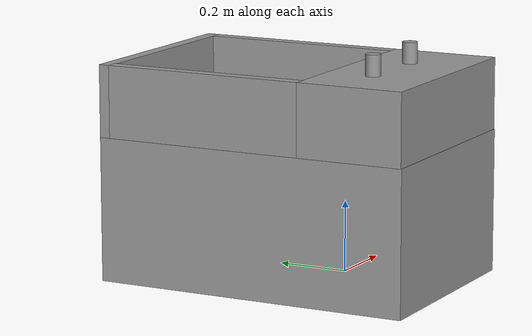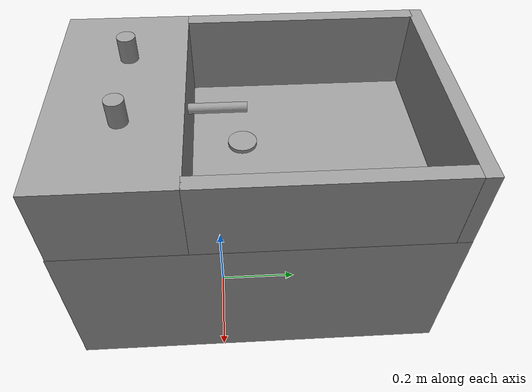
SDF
<?xml version='1.0'?>
<sdf version='1.7'>
  <model name='my_bidet'>
    <link name='link_2'>
      <inertial>
        <mass>1</mass>
        <inertia>
          <ixx>0.166667</ixx>
          <ixy>0</ixy>
          <ixz>0</ixz>
          <iyy>0.166667</iyy>
          <iyz>0</iyz>
          <izz>0.166667</izz>
        </inertia>
        <pose>0 0 0 0 -0 0</pose>
      </inertial>
      <pose>-0.099981 0.092319 0 0 -0 0</pose>
      <gravity>1</gravity>
      <self_collide>0</self_collide>
      <kinematic>0</kinematic>
      <enable_wind>0</enable_wind>
      <visual name='visual'>
        <pose>0 0 0.2 0 -0 0</pose>
        <geometry>
          <box>
            <size>0.6 0.9 0.4</size>
          </box>
        </geometry>
        <material>
          <lighting>1</lighting>
          <script>
            <uri>file://media/materials/scripts/gazebo.material</uri>
            <name>Gazebo/Grey</name>
          </script>
          <shader type='pixel'>
            <normal_map>__default__</normal_map>
          </shader>
          <ambient>0.9 0.9 0.9 1</ambient>
          <diffuse>0.9 0.9 0.9 1</diffuse>
          <specular>0.01 0.01 0.01 1</specular>
          <emissive>0 0 0 1</emissive>
        </material>
        <transparency>0</transparency>
        <cast_shadows>1</cast_shadows>
      </visual>
      <collision name='collision'>
        <laser_retro>0</laser_retro>
        <max_contacts>10</max_contacts>
        <pose>0 0 0.2 0 -0 0</pose>
        <geometry>
          <box>
            <size>0.6 0.9 0.4</size>
          </box>
        </geometry>
        <surface>
          <friction>
            <ode>
              <mu>1</mu>
              <mu2>1</mu2>
              <fdir1>0 0 0</fdir1>
              <slip1>0</slip1>
              <slip2>0</slip2>
            </ode>
            <torsional>
              <coefficient>1</coefficient>
              <patch_radius>0</patch_radius>
              <surface_radius>0</surface_radius>
              <use_patch_radius>1</use_patch_radius>
              <ode>
                <slip>0</slip>
              </ode>
            </torsional>
          </friction>
          <bounce>
            <restitution_coefficient>0</restitution_coefficient>
            <threshold>1e+06</threshold>
          </bounce>
          <contact>
            <collide_without_contact>0</collide_without_contact>
            <collide_without_contact_bitmask>1</collide_without_contact_bitmask>
            <collide_bitmask>1</collide_bitmask>
            <ode>
              <soft_cfm>0</soft_cfm>
              <soft_erp>0.2</soft_erp>
              <kp>1e+13</kp>
              <kd>1</kd>
              <max_vel>0.01</max_vel>
              <min_depth>0</min_depth>
            </ode>
            <bullet>
              <split_impulse>1</split_impulse>
              <split_impulse_penetration_threshold>-0.01</split_impulse_penetration_threshold>
              <soft_cfm>0</soft_cfm>
              <soft_erp>0.2</soft_erp>
              <kp>1e+13</kp>
              <kd>1</kd>
            </bullet>
          </contact>
        </surface>
      </collision>
    </link>
    <link name='link_0'>
      <inertial>
        <mass>1</mass>
        <inertia>
          <ixx>0.145833</ixx>
          <ixy>0</ixy>
          <ixz>0</ixz>
          <iyy>0.145833</iyy>
          <iyz>0</iyz>
          <izz>0.125</izz>
        </inertia>
        <pose>0 0 0 0 -0 0</pose>
      </inertial>
      <pose>-0.107898 0.002946 0.537008 0 -0 0</pose>
      <gravity>0</gravity>
      <self_collide>0</self_collide>
      <kinematic>0</kinematic>
      <enable_wind>0</enable_wind>
      <visual name='visual'>
        <pose>0 0 0 1.5707 -0 0</pose>
        <geometry>
          <cylinder>
            <radius>0.012</radius>
            <length>0.15</length>
          </cylinder>
        </geometry>
        <material>
          <lighting>1</lighting>
          <script>
            <uri>file://media/materials/scripts/gazebo.material</uri>
            <name>Gazebo/Grey</name>
          </script>
          <shader type='pixel'>
            <normal_map>__default__</normal_map>
          </shader>
          <ambient>0.2 0.2 0.2 1</ambient>
          <diffuse>0.2 0.2 0.2 1</diffuse>
          <specular>0.01 0.01 0.01 1</specular>
          <emissive>0 0 0 1</emissive>
        </material>
        <transparency>0</transparency>
        <cast_shadows>1</cast_shadows>
      </visual>
      <collision name='collision'>
        <laser_retro>0</laser_retro>
        <max_contacts>10</max_contacts>
        <pose>0 0 0 1.5707 -0 0</pose>
        <geometry>
          <cylinder>
            <radius>0.012</radius>
            <length>0.15</length>
          </cylinder>
        </geometry>
        <surface>
          <friction>
            <ode>
              <mu>1</mu>
              <mu2>1</mu2>
              <fdir1>0 0 0</fdir1>
              <slip1>0</slip1>
              <slip2>0</slip2>
            </ode>
            <torsional>
              <coefficient>1</coefficient>
              <patch_radius>0</patch_radius>
              <surface_radius>0</surface_radius>
              <use_patch_radius>1</use_patch_radius>
              <ode>
                <slip>0</slip>
              </ode>
            </torsional>
          </friction>
          <bounce>
            <restitution_coefficient>0</restitution_coefficient>
            <threshold>1e+06</threshold>
          </bounce>
          <contact>
            <collide_without_contact>0</collide_without_contact>
            <collide_without_contact_bitmask>1</collide_without_contact_bitmask>
            <collide_bitmask>1</collide_bitmask>
            <ode>
              <soft_cfm>0</soft_cfm>
              <soft_erp>0.2</soft_erp>
              <kp>1e+13</kp>
              <kd>1</kd>
              <max_vel>0.01</max_vel>
              <min_depth>0</min_depth>
            </ode>
            <bullet>
              <split_impulse>1</split_impulse>
              <split_impulse_penetration_threshold>-0.01</split_impulse_penetration_threshold>
              <soft_cfm>0</soft_cfm>
              <soft_erp>0.2</soft_erp>
              <kp>1e+13</kp>
              <kd>1</kd>
            </bullet>
          </contact>
        </surface>
      </collision>
    </link>
    <link name='link_0_clone'>
      <inertial>
        <mass>1</mass>
        <inertia>
          <ixx>0.145833</ixx>
          <ixy>0</ixy>
          <ixz>0</ixz>
          <iyy>0.145833</iyy>
          <iyz>0</iyz>
          <izz>0.125</izz>
        </inertia>
        <pose>0 0 0 0 -0 0</pose>
      </inertial>
      <pose>-0.11579 0.066236 0.419967 0 -0 0</pose>
      <gravity>0</gravity>
      <self_collide>0</self_collide>
      <kinematic>0</kinematic>
      <enable_wind>0</enable_wind>
      <visual name='visual'>
        <pose>0 0 0 0 -0 0</pose>
        <geometry>
          <cylinder>
            <radius>0.035</radius>
            <length>0.01</length>
          </cylinder>
        </geometry>
        <material>
          <lighting>1</lighting>
          <script>
            <uri>file://media/materials/scripts/gazebo.material</uri>
            <name>Gazebo/Grey</name>
          </script>
          <shader type='pixel'>
            <normal_map>__default__</normal_map>
          </shader>
          <ambient>0.2 0.2 0.2 1</ambient>
          <diffuse>0.2 0.2 0.2 1</diffuse>
          <specular>0.01 0.01 0.01 1</specular>
          <emissive>0 0 0 1</emissive>
        </material>
        <transparency>0</transparency>
        <cast_shadows>1</cast_shadows>
      </visual>
      <collision name='collision'>
        <laser_retro>0</laser_retro>
        <max_contacts>10</max_contacts>
        <pose>0 0 0 0 -0 0</pose>
        <geometry>
          <cylinder>
            <radius>0.035</radius>
            <length>0.01</length>
          </cylinder>
        </geometry>
        <surface>
          <friction>
            <ode>
              <mu>1</mu>
              <mu2>1</mu2>
              <fdir1>0 0 0</fdir1>
              <slip1>0</slip1>
              <slip2>0</slip2>
            </ode>
            <torsional>
              <coefficient>1</coefficient>
              <patch_radius>0</patch_radius>
              <surface_radius>0</surface_radius>
              <use_patch_radius>1</use_patch_radius>
              <ode>
                <slip>0</slip>
              </ode>
            </torsional>
          </friction>
          <bounce>
            <restitution_coefficient>0</restitution_coefficient>
            <threshold>1e+06</threshold>
          </bounce>
          <contact>
            <collide_without_contact>0</collide_without_contact>
            <collide_without_contact_bitmask>1</collide_without_contact_bitmask>
            <collide_bitmask>1</collide_bitmask>
            <ode>
              <soft_cfm>0</soft_cfm>
              <soft_erp>0.2</soft_erp>
              <kp>1e+13</kp>
              <kd>1</kd>
              <max_vel>0.01</max_vel>
              <min_depth>0</min_depth>
            </ode>
            <bullet>
              <split_impulse>1</split_impulse>
              <split_impulse_penetration_threshold>-0.01</split_impulse_penetration_threshold>
              <soft_cfm>0</soft_cfm>
              <soft_erp>0.2</soft_erp>
              <kp>1e+13</kp>
              <kd>1</kd>
            </bullet>
          </contact>
        </surface>
      </collision>
    </link>
    <link name='link_0_clone_clone'>
      <inertial>
        <mass>1</mass>
        <inertia>
          <ixx>0.145833</ixx>
          <ixy>0</ixy>
          <ixz>0</ixz>
          <iyy>0.145833</iyy>
          <iyz>0</iyz>
          <izz>0.125</izz>
        </inertia>
        <pose>0 0 0 0 -0 0</pose>
      </inertial>
      <pose>0.004222 -0.190448 0.62857 0 -0 0</pose>
      <gravity>1</gravity>
      <self_collide>0</self_collide>
      <kinematic>0</kinematic>
      <enable_wind>0</enable_wind>
      <visual name='visual'>
        <pose>0 0 0 0 -0 0</pose>
        <geometry>
          <cylinder>
            <radius>0.021</radius>
            <length>0.06</length>
          </cylinder>
        </geometry>
        <material>
          <lighting>1</lighting>
          <script>
            <uri>file://media/materials/scripts/gazebo.material</uri>
            <name>Gazebo/Grey</name>
          </script>
          <shader type='pixel'>
            <normal_map>__default__</normal_map>
          </shader>
          <ambient>0.2 0.2 0.2 1</ambient>
          <diffuse>0.2 0.2 0.2 1</diffuse>
          <specular>0.01 0.01 0.01 1</specular>
          <emissive>0 0 0 1</emissive>
        </material>
        <transparency>0</transparency>
        <cast_shadows>1</cast_shadows>
      </visual>
      <collision name='collision'>
        <laser_retro>0</laser_retro>
        <max_contacts>10</max_contacts>
        <pose>0 0 0 0 -0 0</pose>
        <geometry>
          <cylinder>
            <radius>0.021</radius>
            <length>0.06</length>
          </cylinder>
        </geometry>
        <surface>
          <friction>
            <ode>
              <mu>1</mu>
              <mu2>1</mu2>
              <fdir1>0 0 0</fdir1>
              <slip1>0</slip1>
              <slip2>0</slip2>
            </ode>
            <torsional>
              <coefficient>1</coefficient>
              <patch_radius>0</patch_radius>
              <surface_radius>0</surface_radius>
              <use_patch_radius>1</use_patch_radius>
              <ode>
                <slip>0</slip>
              </ode>
            </torsional>
          </friction>
          <bounce>
            <restitution_coefficient>0</restitution_coefficient>
            <threshold>1e+06</threshold>
          </bounce>
          <contact>
            <collide_without_contact>0</collide_without_contact>
            <collide_without_contact_bitmask>1</collide_without_contact_bitmask>
            <collide_bitmask>1</collide_bitmask>
            <ode>
              <soft_cfm>0</soft_cfm>
              <soft_erp>0.2</soft_erp>
              <kp>1e+13</kp>
              <kd>1</kd>
              <max_vel>0.01</max_vel>
              <min_depth>0</min_depth>
            </ode>
            <bullet>
              <split_impulse>1</split_impulse>
              <split_impulse_penetration_threshold>-0.01</split_impulse_penetration_threshold>
              <soft_cfm>0</soft_cfm>
              <soft_erp>0.2</soft_erp>
              <kp>1e+13</kp>
              <kd>1</kd>
            </bullet>
          </contact>
        </surface>
      </collision>
    </link>
    <link name='link_0_clone_clone_clone'>
      <inertial>
        <mass>1</mass>
        <inertia>
          <ixx>0.145833</ixx>
          <ixy>0</ixy>
          <ixz>0</ixz>
          <iyy>0.145833</iyy>
          <iyz>0</iyz>
          <izz>0.125</izz>
        </inertia>
        <pose>0 0 0 0 -0 0</pose>
      </inertial>
      <pose>-0.220329 -0.188869 0.62857 0 -0 0</pose>
      <gravity>1</gravity>
      <self_collide>0</self_collide>
      <kinematic>0</kinematic>
      <enable_wind>0</enable_wind>
      <visual name='visual'>
        <pose>0 0 0 0 -0 0</pose>
        <geometry>
          <cylinder>
            <radius>0.021</radius>
            <length>0.06</length>
          </cylinder>
        </geometry>
        <material>
          <lighting>1</lighting>
          <script>
            <uri>file://media/materials/scripts/gazebo.material</uri>
            <name>Gazebo/Grey</name>
          </script>
          <shader type='pixel'>
            <normal_map>__default__</normal_map>
          </shader>
          <ambient>0.2 0.2 0.2 1</ambient>
          <diffuse>0.2 0.2 0.2 1</diffuse>
          <specular>0.01 0.01 0.01 1</specular>
          <emissive>0 0 0 1</emissive>
        </material>
        <transparency>0</transparency>
        <cast_shadows>1</cast_shadows>
      </visual>
      <collision name='collision'>
        <laser_retro>0</laser_retro>
        <max_contacts>10</max_contacts>
        <pose>0 0 0 0 -0 0</pose>
        <geometry>
          <cylinder>
            <radius>0.021</radius>
            <length>0.06</length>
          </cylinder>
        </geometry>
        <surface>
          <friction>
            <ode>
              <mu>1</mu>
              <mu2>1</mu2>
              <fdir1>0 0 0</fdir1>
              <slip1>0</slip1>
              <slip2>0</slip2>
            </ode>
            <torsional>
              <coefficient>1</coefficient>
              <patch_radius>0</patch_radius>
              <surface_radius>0</surface_radius>
              <use_patch_radius>1</use_patch_radius>
              <ode>
                <slip>0</slip>
              </ode>
            </torsional>
          </friction>
          <bounce>
            <restitution_coefficient>0</restitution_coefficient>
            <threshold>1e+06</threshold>
          </bounce>
          <contact>
            <collide_without_contact>0</collide_without_contact>
            <collide_without_contact_bitmask>1</collide_without_contact_bitmask>
            <collide_bitmask>1</collide_bitmask>
            <ode>
              <soft_cfm>0</soft_cfm>
              <soft_erp>0.2</soft_erp>
              <kp>1e+13</kp>
              <kd>1</kd>
              <max_vel>0.01</max_vel>
              <min_depth>0</min_depth>
            </ode>
            <bullet>
              <split_impulse>1</split_impulse>
              <split_impulse_penetration_threshold>-0.01</split_impulse_penetration_threshold>
              <soft_cfm>0</soft_cfm>
              <soft_erp>0.2</soft_erp>
              <kp>1e+13</kp>
              <kd>1</kd>
            </bullet>
          </contact>
        </surface>
      </collision>
    </link>
    <link name='link_2_clone'>
      <inertial>
        <mass>1</mass>
        <inertia>
          <ixx>0.166667</ixx>
          <ixy>0</ixy>
          <ixz>0</ixz>
          <iyy>0.166667</iyy>
          <iyz>0</iyz>
          <izz>0.166667</izz>
        </inertia>
        <pose>0 0 0 0 -0 0</pose>
      </inertial>
      <pose>-0.101165 -0.206254 0 0 -0 0</pose>
      <gravity>0</gravity>
      <self_collide>0</self_collide>
      <kinematic>0</kinematic>
      <enable_wind>0</enable_wind>
      <visual name='visual'>
        <pose>0 0 0.5 0 -0 0</pose>
        <geometry>
          <box>
            <size>0.6 0.3 0.2</size>
          </box>
        </geometry>
        <material>
          <lighting>1</lighting>
          <script>
            <uri>file://media/materials/scripts/gazebo.material</uri>
            <name>Gazebo/Grey</name>
          </script>
          <shader type='pixel'>
            <normal_map>__default__</normal_map>
          </shader>
          <ambient>0.9 0.9 0.9 1</ambient>
          <diffuse>0.9 0.9 0.9 1</diffuse>
          <specular>0.01 0.01 0.01 1</specular>
          <emissive>0 0 0 1</emissive>
        </material>
        <transparency>0</transparency>
        <cast_shadows>1</cast_shadows>
      </visual>
      <collision name='collision'>
        <laser_retro>0</laser_retro>
        <max_contacts>10</max_contacts>
        <pose>0 0 0.5 0 -0 0</pose>
        <geometry>
          <box>
            <size>0.6 0.3 0.2</size>
          </box>
        </geometry>
        <surface>
          <friction>
            <ode>
              <mu>1</mu>
              <mu2>1</mu2>
              <fdir1>0 0 0</fdir1>
              <slip1>0</slip1>
              <slip2>0</slip2>
            </ode>
            <torsional>
              <coefficient>1</coefficient>
              <patch_radius>0</patch_radius>
              <surface_radius>0</surface_radius>
              <use_patch_radius>1</use_patch_radius>
              <ode>
                <slip>0</slip>
              </ode>
            </torsional>
          </friction>
          <bounce>
            <restitution_coefficient>0</restitution_coefficient>
            <threshold>1e+06</threshold>
          </bounce>
          <contact>
            <collide_without_contact>0</collide_without_contact>
            <collide_without_contact_bitmask>1</collide_without_contact_bitmask>
            <collide_bitmask>1</collide_bitmask>
            <ode>
              <soft_cfm>0</soft_cfm>
              <soft_erp>0.2</soft_erp>
              <kp>1e+13</kp>
              <kd>1</kd>
              <max_vel>0.01</max_vel>
              <min_depth>0</min_depth>
            </ode>
            <bullet>
              <split_impulse>1</split_impulse>
              <split_impulse_penetration_threshold>-0.01</split_impulse_penetration_threshold>
              <soft_cfm>0</soft_cfm>
              <soft_erp>0.2</soft_erp>
              <kp>1e+13</kp>
              <kd>1</kd>
            </bullet>
          </contact>
        </surface>
      </collision>
    </link>
    <link name='link_2_clone_clone'>
      <inertial>
        <mass>1</mass>
        <inertia>
          <ixx>0.166667</ixx>
          <ixy>0</ixy>
          <ixz>0</ixz>
          <iyy>0.166667</iyy>
          <iyz>0</iyz>
          <izz>0.166667</izz>
        </inertia>
        <pose>0 0 0 0 -0 0</pose>
      </inertial>
      <pose>0.181682 0.225906 0 0 -0 0</pose>
      <gravity>0</gravity>
      <self_collide>0</self_collide>
      <kinematic>0</kinematic>
      <enable_wind>0</enable_wind>
      <visual name='visual'>
        <pose>0 0 0.5 0 -0 0</pose>
        <geometry>
          <box>
            <size>0.035 0.57 0.2</size>
          </box>
        </geometry>
        <material>
          <lighting>1</lighting>
          <script>
            <uri>file://media/materials/scripts/gazebo.material</uri>
            <name>Gazebo/Grey</name>
          </script>
          <shader type='pixel'>
            <normal_map>__default__</normal_map>
          </shader>
          <ambient>0.9 0.9 0.9 1</ambient>
          <diffuse>0.9 0.9 0.9 1</diffuse>
          <specular>0.01 0.01 0.01 1</specular>
          <emissive>0 0 0 1</emissive>
        </material>
        <transparency>0</transparency>
        <cast_shadows>1</cast_shadows>
      </visual>
      <collision name='collision'>
        <laser_retro>0</laser_retro>
        <max_contacts>10</max_contacts>
        <pose>0 0 0.5 0 -0 0</pose>
        <geometry>
          <box>
            <size>0.035 0.57 0.2</size>
          </box>
        </geometry>
        <surface>
          <friction>
            <ode>
              <mu>1</mu>
              <mu2>1</mu2>
              <fdir1>0 0 0</fdir1>
              <slip1>0</slip1>
              <slip2>0</slip2>
            </ode>
            <torsional>
              <coefficient>1</coefficient>
              <patch_radius>0</patch_radius>
              <surface_radius>0</surface_radius>
              <use_patch_radius>1</use_patch_radius>
              <ode>
                <slip>0</slip>
              </ode>
            </torsional>
          </friction>
          <bounce>
            <restitution_coefficient>0</restitution_coefficient>
            <threshold>1e+06</threshold>
          </bounce>
          <contact>
            <collide_without_contact>0</collide_without_contact>
            <collide_without_contact_bitmask>1</collide_without_contact_bitmask>
            <collide_bitmask>1</collide_bitmask>
            <ode>
              <soft_cfm>0</soft_cfm>
              <soft_erp>0.2</soft_erp>
              <kp>1e+13</kp>
              <kd>1</kd>
              <max_vel>0.01</max_vel>
              <min_depth>0</min_depth>
            </ode>
            <bullet>
              <split_impulse>1</split_impulse>
              <split_impulse_penetration_threshold>-0.01</split_impulse_penetration_threshold>
              <soft_cfm>0</soft_cfm>
              <soft_erp>0.2</soft_erp>
              <kp>1e+13</kp>
              <kd>1</kd>
            </bullet>
          </contact>
        </surface>
      </collision>
    </link>
    <link name='link_2_clone_clone_clone'>
      <inertial>
        <mass>1</mass>
        <inertia>
          <ixx>0.166667</ixx>
          <ixy>0</ixy>
          <ixz>0</ixz>
          <iyy>0.166667</iyy>
          <iyz>0</iyz>
          <izz>0.166667</izz>
        </inertia>
        <pose>0 0 0 0 -0 0</pose>
      </inertial>
      <pose>-0.38362 0.227608 0 0 -0 0</pose>
      <gravity>0</gravity>
      <self_collide>0</self_collide>
      <kinematic>0</kinematic>
      <enable_wind>0</enable_wind>
      <visual name='visual'>
        <pose>0 0 0.5 0 -0 0</pose>
        <geometry>
          <box>
            <size>0.035 0.57 0.2</size>
          </box>
        </geometry>
        <material>
          <lighting>1</lighting>
          <script>
            <uri>file://media/materials/scripts/gazebo.material</uri>
            <name>Gazebo/Grey</name>
          </script>
          <shader type='pixel'>
            <normal_map>__default__</normal_map>
          </shader>
          <ambient>0.9 0.9 0.9 1</ambient>
          <diffuse>0.9 0.9 0.9 1</diffuse>
          <specular>0.01 0.01 0.01 1</specular>
          <emissive>0 0 0 1</emissive>
        </material>
        <transparency>0</transparency>
        <cast_shadows>1</cast_shadows>
      </visual>
      <collision name='collision'>
        <laser_retro>0</laser_retro>
        <max_contacts>10</max_contacts>
        <pose>0 0 0.5 0 -0 0</pose>
        <geometry>
          <box>
            <size>0.035 0.57 0.2</size>
          </box>
        </geometry>
        <surface>
          <friction>
            <ode>
              <mu>1</mu>
              <mu2>1</mu2>
              <fdir1>0 0 0</fdir1>
              <slip1>0</slip1>
              <slip2>0</slip2>
            </ode>
            <torsional>
              <coefficient>1</coefficient>
              <patch_radius>0</patch_radius>
              <surface_radius>0</surface_radius>
              <use_patch_radius>1</use_patch_radius>
              <ode>
                <slip>0</slip>
              </ode>
            </torsional>
          </friction>
          <bounce>
            <restitution_coefficient>0</restitution_coefficient>
            <threshold>1e+06</threshold>
          </bounce>
          <contact>
            <collide_without_contact>0</collide_without_contact>
            <collide_without_contact_bitmask>1</collide_without_contact_bitmask>
            <collide_bitmask>1</collide_bitmask>
            <ode>
              <soft_cfm>0</soft_cfm>
              <soft_erp>0.2</soft_erp>
              <kp>1e+13</kp>
              <kd>1</kd>
              <max_vel>0.01</max_vel>
              <min_depth>0</min_depth>
            </ode>
            <bullet>
              <split_impulse>1</split_impulse>
              <split_impulse_penetration_threshold>-0.01</split_impulse_penetration_threshold>
              <soft_cfm>0</soft_cfm>
              <soft_erp>0.2</soft_erp>
              <kp>1e+13</kp>
              <kd>1</kd>
            </bullet>
          </contact>
        </surface>
      </collision>
    </link>
    <link name='link_2_clone_clone_clone_0'>
      <inertial>
        <mass>1</mass>
        <inertia>
          <ixx>0.166667</ixx>
          <ixy>0</ixy>
          <ixz>0</ixz>
          <iyy>0.166667</iyy>
          <iyz>0</iyz>
          <izz>0.166667</izz>
        </inertia>
        <pose>0 0 0 0 -0 0</pose>
      </inertial>
      <pose>-0.100337 0.524714 0 0 -0 0</pose>
      <gravity>0</gravity>
      <self_collide>0</self_collide>
      <kinematic>0</kinematic>
      <enable_wind>0</enable_wind>
      <visual name='visual'>
        <pose>0 0 0.5 0 -0 1.5707</pose>
        <geometry>
          <box>
            <size>0.035 0.6 0.2</size>
          </box>
        </geometry>
        <material>
          <lighting>1</lighting>
          <script>
            <uri>file://media/materials/scripts/gazebo.material</uri>
            <name>Gazebo/Grey</name>
          </script>
          <shader type='pixel'>
            <normal_map>__default__</normal_map>
          </shader>
          <ambient>0.9 0.9 0.9 1</ambient>
          <diffuse>0.9 0.9 0.9 1</diffuse>
          <specular>0.01 0.01 0.01 1</specular>
          <emissive>0 0 0 1</emissive>
        </material>
        <transparency>0</transparency>
        <cast_shadows>1</cast_shadows>
      </visual>
      <collision name='collision'>
        <laser_retro>0</laser_retro>
        <max_contacts>10</max_contacts>
        <pose>0 0 0.5 0 -0 1.5707</pose>
        <geometry>
          <box>
            <size>0.035 0.6 0.2</size>
          </box>
        </geometry>
        <surface>
          <friction>
            <ode>
              <mu>1</mu>
              <mu2>1</mu2>
              <fdir1>0 0 0</fdir1>
              <slip1>0</slip1>
              <slip2>0</slip2>
            </ode>
            <torsional>
              <coefficient>1</coefficient>
              <patch_radius>0</patch_radius>
              <surface_radius>0</surface_radius>
              <use_patch_radius>1</use_patch_radius>
              <ode>
                <slip>0</slip>
              </ode>
            </torsional>
          </friction>
          <bounce>
            <restitution_coefficient>0</restitution_coefficient>
            <threshold>1e+06</threshold>
          </bounce>
          <contact>
            <collide_without_contact>0</collide_without_contact>
            <collide_without_contact_bitmask>1</collide_without_contact_bitmask>
            <collide_bitmask>1</collide_bitmask>
            <ode>
              <soft_cfm>0</soft_cfm>
              <soft_erp>0.2</soft_erp>
              <kp>1e+13</kp>
              <kd>1</kd>
              <max_vel>0.01</max_vel>
              <min_depth>0</min_depth>
            </ode>
            <bullet>
              <split_impulse>1</split_impulse>
              <split_impulse_penetration_threshold>-0.01</split_impulse_penetration_threshold>
              <soft_cfm>0</soft_cfm>
              <soft_erp>0.2</soft_erp>
              <kp>1e+13</kp>
              <kd>1</kd>
            </bullet>
          </contact>
        </surface>
      </collision>
    </link>
    <static>1</static>
    <allow_auto_disable>1</allow_auto_disable>
  </model>
</sdf>
